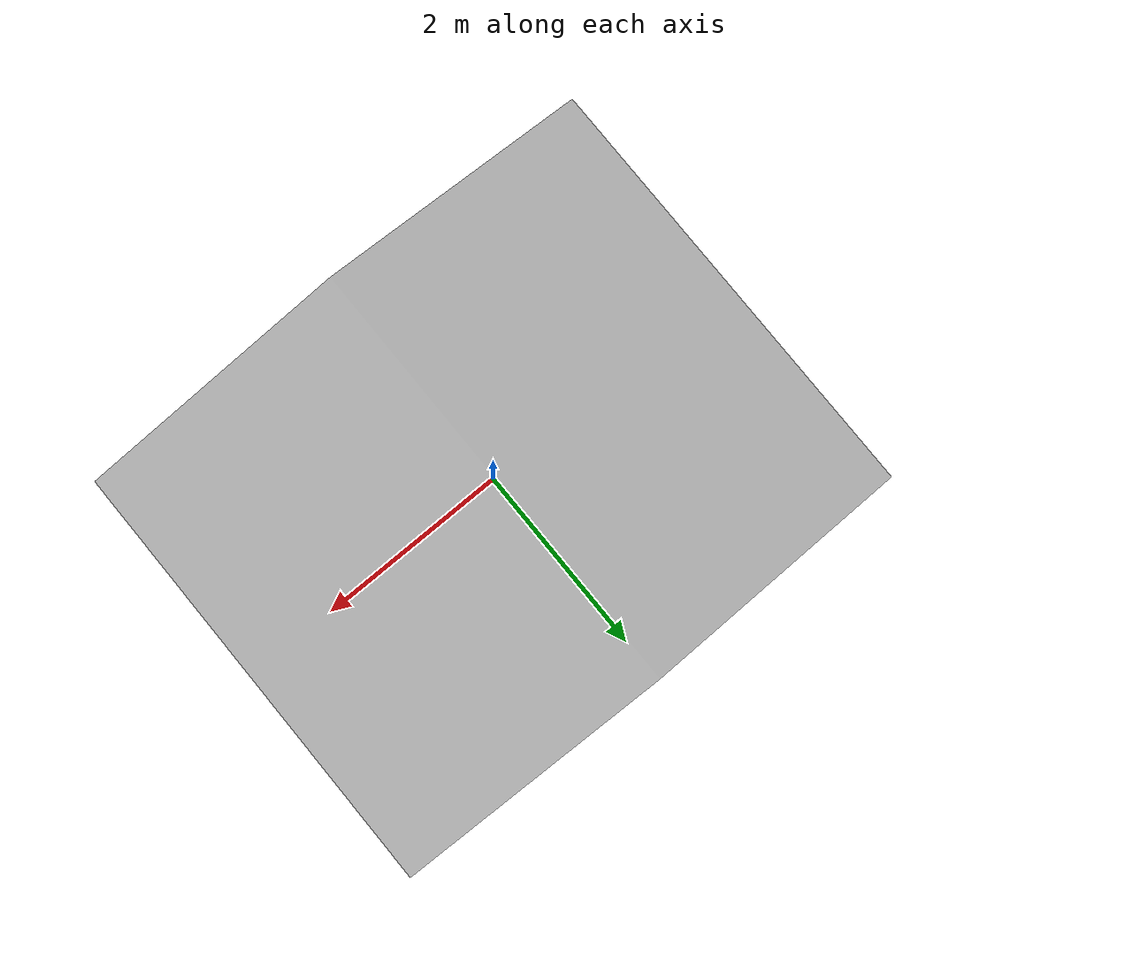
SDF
<?xml version="1.0"?>
<sdf version="1.9">
  <model name="igvc2027_ramp">
    <static>true</static>
    <link name="link">
      <collision name="collision">
        <geometry><mesh><uri>model://igvc2027_ramp/meshes/ramp.obj</uri></mesh></geometry>
        <surface><friction><ode><mu>0.9</mu><mu2>0.9</mu2></ode></friction></surface>
      </collision>
      <visual name="visual">
        <geometry><mesh><uri>model://igvc2027_ramp/meshes/ramp.obj</uri></mesh></geometry>
      </visual>
    </link>
  </model>
</sdf>
